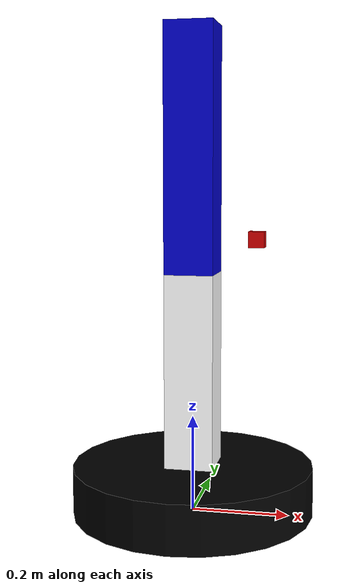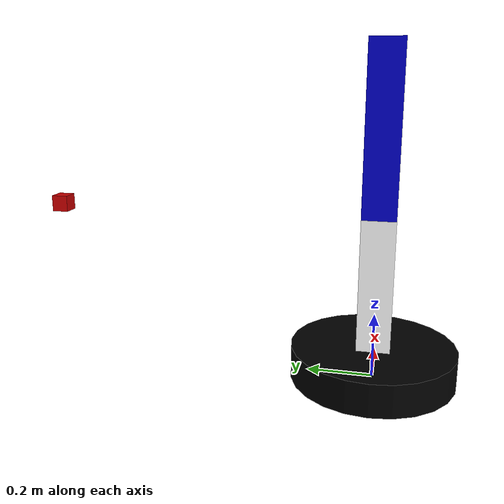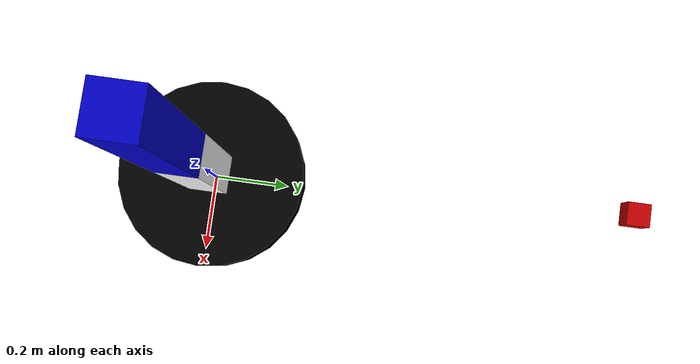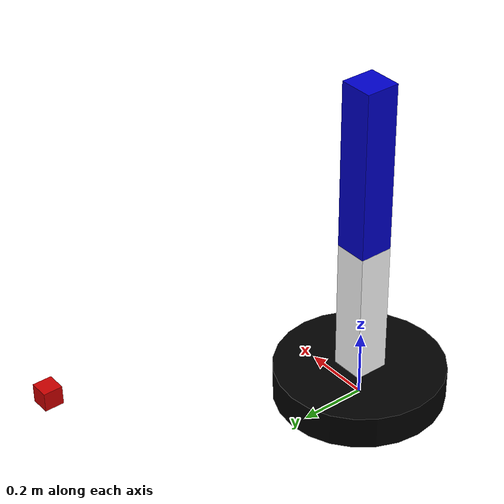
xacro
<?xml version="1.0"?>

<robot xmlns:xacro="http://www.ros.org/wiki/xacro" name="hitw_arm_robot">
  <xacro:arg name="prefix" default=""/>
  <xacro:arg name="use_gazebo" default="false"/>

  <!--****************************FILE INCLUSIONS****************************-->
  <xacro:include filename="hitw_arm.urdf.xacro"/>
  <xacro:include filename="ros2_control.xacro"/>
  <xacro:include filename="transmissions.xacro"/>
  <xacro:include filename="materials.xacro"/>
  <xacro:include filename="camera.xacro"/>

  <!--****************************BUILD THE ROBOT****************************-->
  <!-- Used for fixing robot -->
  <link name="world"/>

  <xacro:hitw_arm_core parent="world" prefix="$(arg prefix)">
    <origin xyz="0 0 0" rpy="0 0 0"/>
  </xacro:hitw_arm_core>

  <xacro:hitw_camera prefix="$(arg prefix)"/>

  <xacro:hitw_arm_ros2_control prefix="$(arg prefix)" use_gazebo="$(arg use_gazebo)"/>

  <xacro:hitw_arm_transmissions prefix="$(arg prefix)"/>

</robot>

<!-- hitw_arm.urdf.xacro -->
<robot xmlns:xacro="http://www.ros.org/wiki/xacro">

  <xacro:macro name="hitw_arm_core" params="parent prefix *origin">

    <xacro:include filename="inertia_macro.xacro"/>

    <!--********************************* BASE LINK *********************************-->
    <link name="${prefix}base_link">
      <visual>
        <origin xyz="0 0 0.05"/>
        <geometry>
          <cylinder radius="0.25" length="0.1"/>
        </geometry>
        <material name="black"/>
      </visual>

      <collision>
        <origin xyz="0 0 0.05"/>
        <geometry>
          <cylinder radius="0.25" length="0.1"/>
        </geometry>
      </collision>

      <xacro:cylinder_inertia m="10.0" r="0.25" h="0.1"/>
    </link>

    <gazebo reference="${prefix}base_link">
      <material>Gazebo/Black</material>
    </gazebo>

    <!--********************************* BASE JOINT *********************************-->
    <joint name="${prefix}base_joint" type="fixed">
      <xacro:insert_block name="origin"/>
      <parent link="${parent}"/>
      <child link="${prefix}base_link"/>
    </joint>

    <!--********************************* LINK 1 *********************************-->
    <link name="${prefix}link1">
      <visual>
        <origin xyz="0 0 0.25"/>
        <geometry>
          <box size="0.1 0.1 0.5"/>
        </geometry>
        <material name="white"/>
      </visual>

      <collision>
        <origin xyz="0 0 0.25"/>
        <geometry>
          <box size="0.1 0.1 0.5"/>
        </geometry>
      </collision>

      <xacro:box_inertia m="0.5" d="0.1" w="0.1" h="0.5"/>
    </link>

    <gazebo reference="${prefix}link1">
      <material>Gazebo/White</material>
    </gazebo>

    <!--********************************* LINK 2 *********************************-->
    <link name="${prefix}link2">
      <visual>
        <origin xyz="0 0 0.25"/>
        <geometry>
          <box size="0.1 0.1 0.5"/>
        </geometry>
        <material name="blue"/>
      </visual>

      <collision>
        <origin xyz="0 0 0.25"/>
        <geometry>
          <box size="0.1 0.1 0.5"/>
        </geometry>
      </collision>

      <xacro:box_inertia m="0.5" d="0.1" w="0.1" h="0.5"/>
    </link>

    <gazebo reference="${prefix}link2">
      <material>Gazebo/Blue</material>
    </gazebo>

    <!--********************************* JOINT 1 *********************************-->
    <joint name="${prefix}joint1" type="revolute">
      <axis xyz="0 1 0"/>
      <limit effort="1000.0" lower="-1.5708" upper="1.5708" velocity="0.5"/>
      <origin rpy="0 0 0" xyz="0 0 0"/>
      <parent link="${prefix}base_link"/>
      <child link="${prefix}link1"/>
      <limit
        lower="${-2.0*pi}"
        upper="${2.0*pi}"/>
    </joint>

    <!--********************************* JOINT 2 *********************************-->
    <joint name="${prefix}joint2" type="revolute">
      <axis xyz="0 1 0"/>
      <limit effort="1000.0" lower="-1.5708" upper="1.5708" velocity="0.5"/>
      <origin rpy="0 0 0" xyz="0 0 0.5"/>
      <parent link="${prefix}link1"/>
      <child link="${prefix}link2"/>
      <limit
        lower="${-2.0*pi}"
        upper="${2.0*pi}"/>
    </joint>

  </xacro:macro>

</robot>

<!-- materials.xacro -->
<robot xmlns:xacro="http://www.ros.org/wiki/xacro">

  <material name="blue">
    <color rgba="0 0 0.8 1"/>
  </material>
  <material name="red">
    <color rgba="0.8 0 0 1"/>
  </material>
  <material name="black">
    <color rgba="0 0 0 1"/>
  </material>
  <material name="white">
    <color rgba="1 1 1 1"/>
  </material>

</robot>

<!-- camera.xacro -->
<robot xmlns:xacro="http://www.ros.org/wiki/xacro">

  <xacro:macro name="hitw_camera" params="prefix">

    <link name="${prefix}rgb_camera_link">
      <visual>
        <origin xyz="0 0 0"/>
        <geometry>
          <box size="0.05 0.05 0.05"/>
        </geometry>
        <material name="red"/>
      </visual>
    </link>

    <gazebo reference="${prefix}rgb_camera_link">
      <material>Gazebo/Black</material>
    </gazebo>

    <joint name="${prefix}rgb_camera_link_joint" type="fixed">
      <origin rpy="0 0 ${pi/2}" xyz="0.0 1.0 0.5"/>
	  <parent link="${prefix}base_link"/>
	  <child link="${prefix}rgb_camera_link"/>
    </joint>

    <link name="${prefix}rgb_camera_link_frame">
    </link>

    <joint name="${prefix}rgb_camera_frame_joint" type="fixed">
      <origin xyz="0 0 0" rpy="0 0 0"/>
      <parent link="${prefix}rgb_camera_link"/>
      <child link="${prefix}rgb_camera_link_frame"/>
    </joint>

    <gazebo reference="${prefix}rgb_camera_link_frame">
      <sensor type="camera" name="rgb_cam">
        <alwaysOn>true</alwaysOn>
        <visualize>true</visualize>
        <update_rate>10.0</update_rate>

        <camera name="rgb_cam_SP">
          <pose>0 0 0 0 0 0</pose>
          <horizontal_fov>1.3962634</horizontal_fov>
          <image>
            <width>640</width>
            <height>480</height>
            <format>R8G8B8</format>
          </image>
          <clip>
            <near>0.005</near>
            <far>20.0</far>
          </clip>
        </camera>

        <plugin filename="libgazebo_ros_camera.so" name="camera_controller">
          <cameraName>hitw_camera/camera</cameraName>
          <imageTopicName>image_raw</imageTopicName>
          <cameraInfoTopicName>camera_info</cameraInfoTopicName>
          <frameName>rgb_camera_link_frame</frameName>
          <hackBaseline>0.07</hackBaseline>
          <distortionK1>0.0</distortionK1>
          <distortionK2>0.0</distortionK2>
          <distortionK3>0.0</distortionK3>
          <distortionT1>0.0</distortionT1>
          <distortionT2>0.0</distortionT2>
        </plugin>
      </sensor>
    </gazebo>

  </xacro:macro>

</robot>

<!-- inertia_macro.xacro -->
<robot xmlns:xacro="http://www.ros.org/wiki/xacro">

  <xacro:macro name="cylinder_inertia" params="m r h">
    <inertial>
      <origin xyz="0 0 0" rpy="${pi/2} 0 0"/>
      <mass value="${m}"/>
      <inertia
        ixx="${(m/12) * (3*r*r + h*h)}"
        ixy = "0"
        ixz = "0"
        iyy="${(m/12) * (3*r*r + h*h)}"
        iyz = "0"
        izz="${(m/2) * (r*r)}"/>
    </inertial>
  </xacro:macro>

  <xacro:macro name="box_inertia" params="m w h d">
    <inertial>
      <origin xyz="0 0 0" rpy="${pi/2} 0 ${pi/2}"/>
      <mass value="${m}"/>
      <inertia
        ixx="${(m/12) * (h*h + d*d)}"
        ixy="0.0"
        ixz="0.0"
        iyy="${(m/12) * (w*w + d*d)}"
        iyz="0.0"
        izz="${(m/12) * (w*w + h*h)}"/>
    </inertial>
  </xacro:macro>

</robot>
